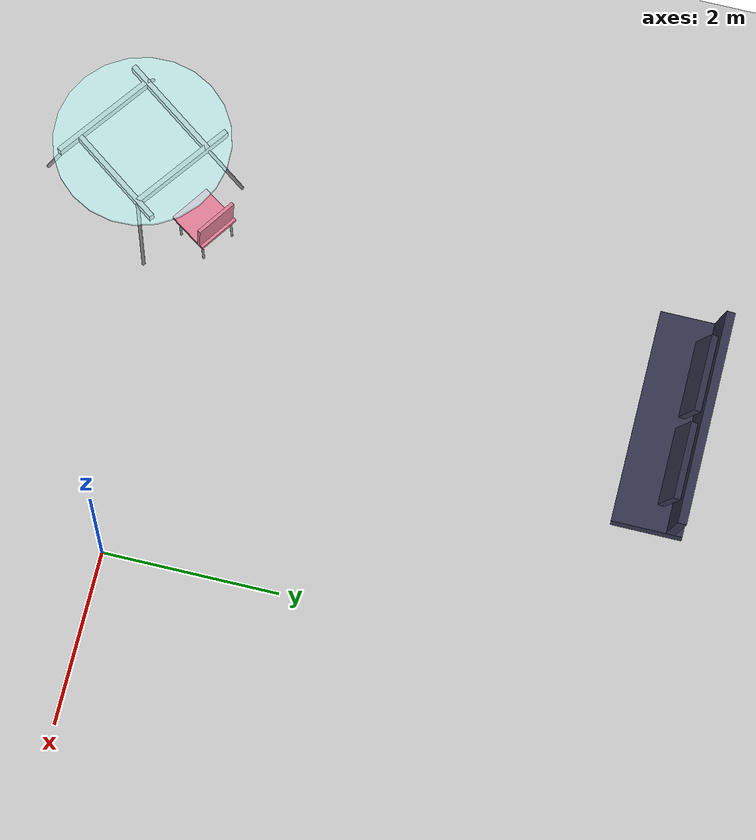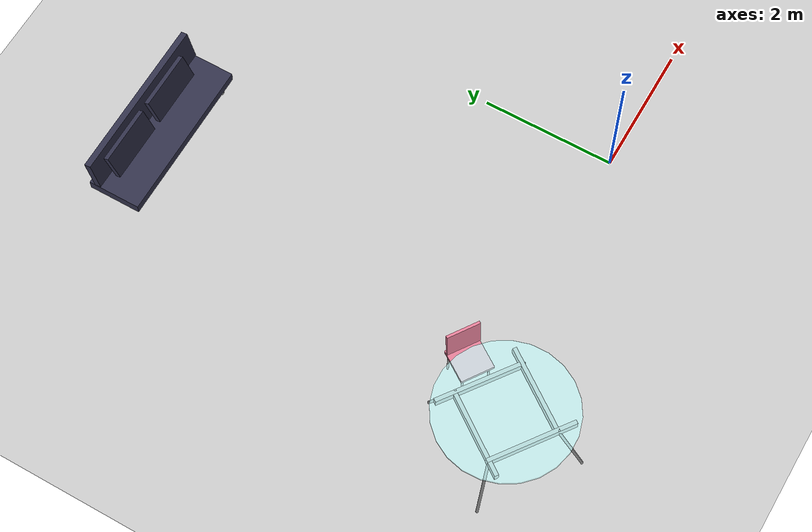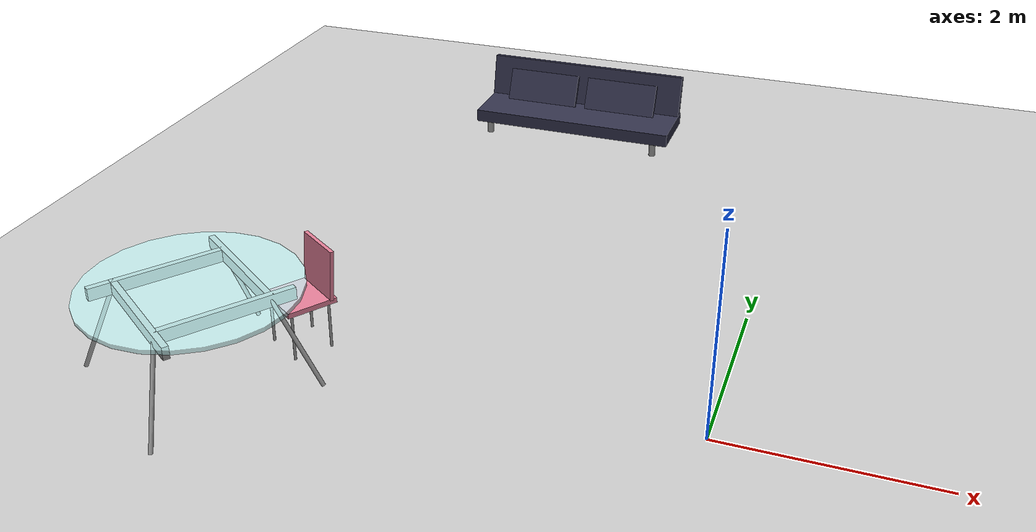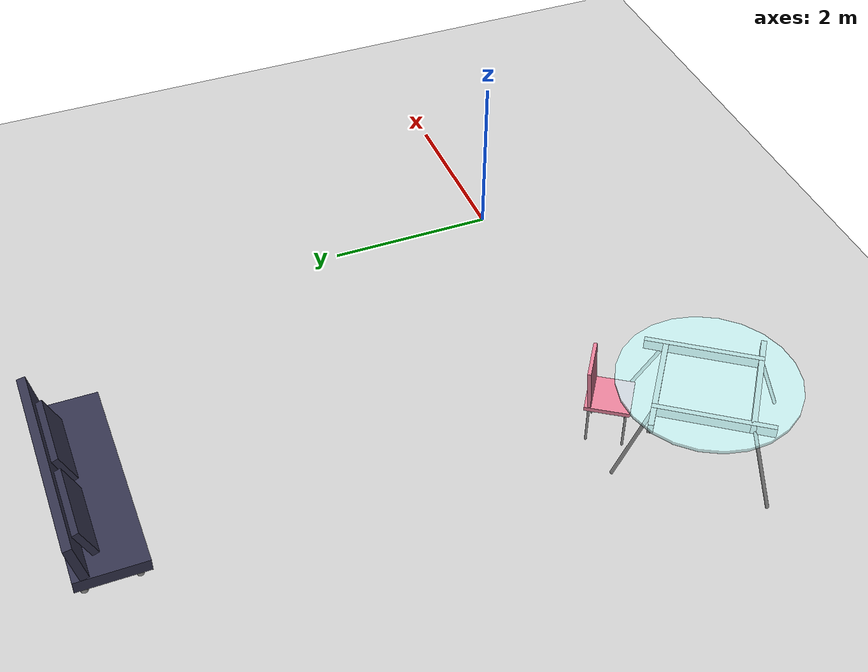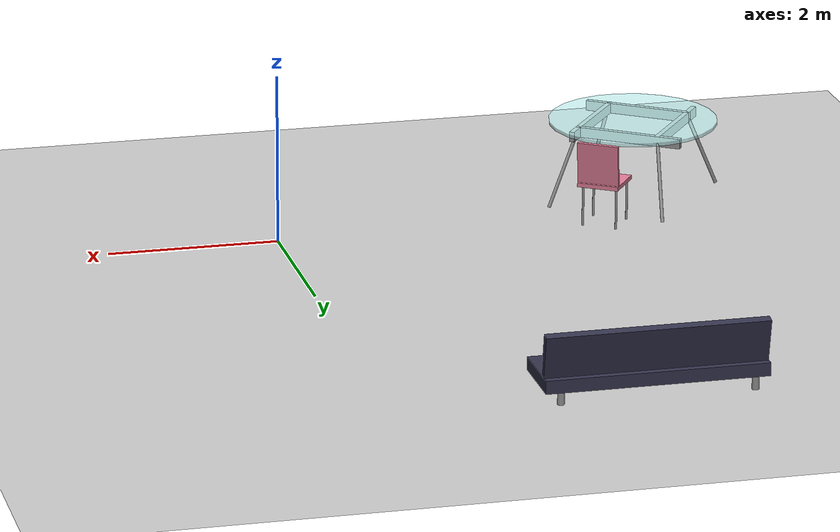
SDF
<sdf version="1.6">
 <world name="default">
  <model name="ground_plane">
   <static>1</static>
   <link name="link">
    <collision name="collision">
     <geometry><plane><normal>0 0 1</normal><size>100 100</size></plane></geometry>
     <surface>
      <contact><collide_bitmask>65535</collide_bitmask></contact>
      <friction><ode><mu>100</mu><mu2>50</mu2></ode></friction>
     </surface>
    </collision>
    <visual name="visual">
     <cast_shadows>0</cast_shadows>
     <geometry><plane><normal>0 0 1</normal><size>100 100</size></plane></geometry>
     <material>
      <script><uri>file://media/materials/scripts/gazebo.material</uri><name>Gazebo/Grey</name></script>
     </material>
    </visual>
   </link>
  </model>
  <model name="my_sofa_v2">
   <link name="link">
    <inertial>
     <mass>1</mass>
     <inertia>
      <ixx>0.166667</ixx>
      <ixy>0</ixy>
      <ixz>0</ixz>
      <iyy>0.166667</iyy>
      <iyz>0</iyz>
      <izz>0.166667</izz>
     </inertia>
     <pose>0 0 0.25 0 -0 0</pose>
    </inertial>
    <pose>0.065484 -0.164497 0 0 -0 0</pose>
    <visual name="visual">
     <geometry><box><size>2.5 0.8 0.15</size></box></geometry>
     <material>
      <script><name>Gazebo/Grey</name><uri>file://media/materials/scripts/gazebo.material</uri></script>
      <shader type="pixel"><normal_map>__default__</normal_map></shader>
      <ambient>0.2 0.2 0.3 1</ambient>
      <diffuse>0.2 0.2 0.3 1</diffuse>
      <specular>0.01 0.01 0.01 1</specular>
      <emissive>0.1 0.1 0.1 1</emissive>
     </material>
     <pose>0 0 0.25 0 -0 0</pose>
    </visual>
    <collision name="collision">
     <pose>0 0 0.25 0 -0 0</pose>
     <geometry><box><size>2.5 0.8 0.15</size></box></geometry>
     <surface>
      <friction>
       <ode><mu>1</mu><mu2>1</mu2><fdir1>0 0 0</fdir1><slip1>0</slip1><slip2>0</slip2></ode>
       <torsional>
        <coefficient>1</coefficient>
        <patch_radius>0</patch_radius>
        <surface_radius>0</surface_radius>
        <use_patch_radius>1</use_patch_radius>
        <ode><slip>0</slip></ode>
       </torsional>
      </friction>
      <bounce><restitution_coefficient>0</restitution_coefficient><threshold>1e+06</threshold></bounce>
      <contact>
       <collide_without_contact>0</collide_without_contact>
       <collide_without_contact_bitmask>1</collide_without_contact_bitmask>
       <collide_bitmask>1</collide_bitmask>
       <ode>
        <soft_cfm>0</soft_cfm>
        <soft_erp>0.2</soft_erp>
        <kp>1e+13</kp>
        <kd>1</kd>
        <max_vel>0.01</max_vel>
        <min_depth>0</min_depth>
       </ode>
       <bullet>
        <split_impulse>1</split_impulse>
        <split_impulse_penetration_threshold>-0.01</split_impulse_penetration_threshold>
        <soft_cfm>0</soft_cfm>
        <soft_erp>0.2</soft_erp>
        <kp>1e+13</kp>
        <kd>1</kd>
       </bullet>
      </contact>
     </surface>
    </collision>
   </link>
   <link name="link_0_clone">
    <inertial>
     <mass>1</mass>
     <inertia><ixx>0.145833</ixx><ixy>0</ixy><ixz>0</ixz><iyy>0.145833</iyy><iyz>0</iyz><izz>0.125</izz></inertia>
     <pose>0 0 0.5 0 -0 0</pose>
    </inertial>
    <pose>-0.992613 0.144994 -0.4 0 -0 0</pose>
    <visual name="visual">
     <pose>0 0 0.5 0 -0 0</pose>
     <geometry><cylinder><radius>0.04</radius><length>0.2</length></cylinder></geometry>
     <material>
      <lighting>1</lighting>
      <script><uri>file://media/materials/scripts/gazebo.material</uri><name>Gazebo/Grey</name></script>
      <shader type="pixel"><normal_map>__default__</normal_map></shader>
      <ambient>0.7 0.7 0.7 1</ambient>
      <diffuse>0.7 0.7 0.7 1</diffuse>
      <specular>0.01 0.01 0.01 1</specular>
      <emissive>0 0 0 1</emissive>
     </material>
    </visual>
    <collision name="collision">
     <pose>0 0 0.5 0 -0 0</pose>
     <geometry><cylinder><radius>0.04</radius><length>0.2</length></cylinder></geometry>
     <surface>
      <friction>
       <ode><mu>1</mu><mu2>1</mu2><fdir1>0 0 0</fdir1><slip1>0</slip1><slip2>0</slip2></ode>
       <torsional>
        <coefficient>1</coefficient>
        <patch_radius>0</patch_radius>
        <surface_radius>0</surface_radius>
        <use_patch_radius>1</use_patch_radius>
        <ode><slip>0</slip></ode>
       </torsional>
      </friction>
      <bounce><restitution_coefficient>0</restitution_coefficient><threshold>1e+06</threshold></bounce>
      <contact>
       <collide_without_contact>0</collide_without_contact>
       <collide_without_contact_bitmask>1</collide_without_contact_bitmask>
       <collide_bitmask>1</collide_bitmask>
       <ode>
        <soft_cfm>0</soft_cfm>
        <soft_erp>0.2</soft_erp>
        <kp>1e+13</kp>
        <kd>1</kd>
        <max_vel>0.01</max_vel>
        <min_depth>0</min_depth>
       </ode>
       <bullet>
        <split_impulse>1</split_impulse>
        <split_impulse_penetration_threshold>-0.01</split_impulse_penetration_threshold>
        <soft_cfm>0</soft_cfm>
        <soft_erp>0.2</soft_erp>
        <kp>1e+13</kp>
        <kd>1</kd>
       </bullet>
      </contact>
     </surface>
    </collision>
   </link>
   <link name="link_0_clone_clone">
    <inertial>
     <mass>1</mass>
     <inertia><ixx>0.145833</ixx><ixy>0</ixy><ixz>0</ixz><iyy>0.145833</iyy><iyz>0</iyz><izz>0.125</izz></inertia>
     <pose>0 0 0.5 0 -0 0</pose>
    </inertial>
    <pose>1.174 0.117328 -0.4 0 -0 0</pose>
    <visual name="visual">
     <pose>0 0 0.5 0 -0 0</pose>
     <geometry><cylinder><radius>0.04</radius><length>0.2</length></cylinder></geometry>
     <material>
      <lighting>1</lighting>
      <script><uri>file://media/materials/scripts/gazebo.material</uri><name>Gazebo/Grey</name></script>
      <shader type="pixel"><normal_map>__default__</normal_map></shader>
      <ambient>0.7 0.7 0.7 1</ambient>
      <diffuse>0.7 0.7 0.7 1</diffuse>
      <specular>0.01 0.01 0.01 1</specular>
      <emissive>0 0 0 1</emissive>
     </material>
    </visual>
    <collision name="collision">
     <pose>0 0 0.5 0 -0 0</pose>
     <geometry><cylinder><radius>0.04</radius><length>0.2</length></cylinder></geometry>
     <surface>
      <friction>
       <ode><mu>1</mu><mu2>1</mu2><fdir1>0 0 0</fdir1><slip1>0</slip1><slip2>0</slip2></ode>
       <torsional>
        <coefficient>1</coefficient>
        <patch_radius>0</patch_radius>
        <surface_radius>0</surface_radius>
        <use_patch_radius>1</use_patch_radius>
        <ode><slip>0</slip></ode>
       </torsional>
      </friction>
      <bounce><restitution_coefficient>0</restitution_coefficient><threshold>1e+06</threshold></bounce>
      <contact>
       <collide_without_contact>0</collide_without_contact>
       <collide_without_contact_bitmask>1</collide_without_contact_bitmask>
       <collide_bitmask>1</collide_bitmask>
       <ode>
        <soft_cfm>0</soft_cfm>
        <soft_erp>0.2</soft_erp>
        <kp>1e+13</kp>
        <kd>1</kd>
        <max_vel>0.01</max_vel>
        <min_depth>0</min_depth>
       </ode>
       <bullet>
        <split_impulse>1</split_impulse>
        <split_impulse_penetration_threshold>-0.01</split_impulse_penetration_threshold>
        <soft_cfm>0</soft_cfm>
        <soft_erp>0.2</soft_erp>
        <kp>1e+13</kp>
        <kd>1</kd>
       </bullet>
      </contact>
     </surface>
    </collision>
   </link>
   <link name="link_0_clone_clone_0">
    <inertial>
     <mass>1</mass>
     <inertia><ixx>0.145833</ixx><ixy>0</ixy><ixz>0</ixz><iyy>0.145833</iyy><iyz>0</iyz><izz>0.125</izz></inertia>
     <pose>0 0 0.5 0 -0 0</pose>
    </inertial>
    <pose>-0.981901 -0.432294 -0.4 0 -0 0</pose>
    <visual name="visual">
     <pose>0 0 0.5 0 -0 0</pose>
     <geometry><cylinder><radius>0.04</radius><length>0.2</length></cylinder></geometry>
     <material>
      <lighting>1</lighting>
      <script><uri>file://media/materials/scripts/gazebo.material</uri><name>Gazebo/Grey</name></script>
      <shader type="pixel"><normal_map>__default__</normal_map></shader>
      <ambient>0.7 0.7 0.7 1</ambient>
      <diffuse>0.7 0.7 0.7 1</diffuse>
      <specular>0.01 0.01 0.01 1</specular>
      <emissive>0 0 0 1</emissive>
     </material>
    </visual>
    <collision name="collision">
     <pose>0 0 0.5 0 -0 0</pose>
     <geometry><cylinder><radius>0.04</radius><length>0.2</length></cylinder></geometry>
     <surface>
      <friction>
       <ode><mu>1</mu><mu2>1</mu2><fdir1>0 0 0</fdir1><slip1>0</slip1><slip2>0</slip2></ode>
       <torsional>
        <coefficient>1</coefficient>
        <patch_radius>0</patch_radius>
        <surface_radius>0</surface_radius>
        <use_patch_radius>1</use_patch_radius>
        <ode><slip>0</slip></ode>
       </torsional>
      </friction>
      <bounce><restitution_coefficient>0</restitution_coefficient><threshold>1e+06</threshold></bounce>
      <contact>
       <collide_without_contact>0</collide_without_contact>
       <collide_without_contact_bitmask>1</collide_without_contact_bitmask>
       <collide_bitmask>1</collide_bitmask>
       <ode>
        <soft_cfm>0</soft_cfm>
        <soft_erp>0.2</soft_erp>
        <kp>1e+13</kp>
        <kd>1</kd>
        <max_vel>0.01</max_vel>
        <min_depth>0</min_depth>
       </ode>
       <bullet>
        <split_impulse>1</split_impulse>
        <split_impulse_penetration_threshold>-0.01</split_impulse_penetration_threshold>
        <soft_cfm>0</soft_cfm>
        <soft_erp>0.2</soft_erp>
        <kp>1e+13</kp>
        <kd>1</kd>
       </bullet>
      </contact>
     </surface>
    </collision>
   </link>
   <link name="link_0_clone_clone_1">
    <inertial>
     <mass>1</mass>
     <inertia><ixx>0.145833</ixx><ixy>0</ixy><ixz>0</ixz><iyy>0.145833</iyy><iyz>0</iyz><izz>0.125</izz></inertia>
     <pose>0 0 0.5 0 -0 0</pose>
    </inertial>
    <pose>1.178 -0.457589 -0.4 0 -0 0</pose>
    <visual name="visual">
     <pose>0 0 0.5 0 -0 0</pose>
     <geometry><cylinder><radius>0.04</radius><length>0.2</length></cylinder></geometry>
     <material>
      <lighting>1</lighting>
      <script><uri>file://media/materials/scripts/gazebo.material</uri><name>Gazebo/Grey</name></script>
      <shader type="pixel"><normal_map>__default__</normal_map></shader>
      <ambient>0.7 0.7 0.7 1</ambient>
      <diffuse>0.7 0.7 0.7 1</diffuse>
      <specular>0.01 0.01 0.01 1</specular>
      <emissive>0 0 0 1</emissive>
     </material>
    </visual>
    <collision name="collision">
     <pose>0 0 0.5 0 -0 0</pose>
     <geometry><cylinder><radius>0.04</radius><length>0.2</length></cylinder></geometry>
     <surface>
      <friction>
       <ode><mu>1</mu><mu2>1</mu2><fdir1>0 0 0</fdir1><slip1>0</slip1><slip2>0</slip2></ode>
       <torsional>
        <coefficient>1</coefficient>
        <patch_radius>0</patch_radius>
        <surface_radius>0</surface_radius>
        <use_patch_radius>1</use_patch_radius>
        <ode><slip>0</slip></ode>
       </torsional>
      </friction>
      <bounce><restitution_coefficient>0</restitution_coefficient><threshold>1e+06</threshold></bounce>
      <contact>
       <collide_without_contact>0</collide_without_contact>
       <collide_without_contact_bitmask>1</collide_without_contact_bitmask>
       <collide_bitmask>1</collide_bitmask>
       <ode>
        <soft_cfm>0</soft_cfm>
        <soft_erp>0.2</soft_erp>
        <kp>1e+13</kp>
        <kd>1</kd>
        <max_vel>0.01</max_vel>
        <min_depth>0</min_depth>
       </ode>
       <bullet>
        <split_impulse>1</split_impulse>
        <split_impulse_penetration_threshold>-0.01</split_impulse_penetration_threshold>
        <soft_cfm>0</soft_cfm>
        <soft_erp>0.2</soft_erp>
        <kp>1e+13</kp>
        <kd>1</kd>
       </bullet>
      </contact>
     </surface>
    </collision>
   </link>
   <link name="link_1">
    <inertial>
     <mass>1</mass>
     <inertia>
      <ixx>0.166667</ixx>
      <ixy>0</ixy>
      <ixz>0</ixz>
      <iyy>0.166667</iyy>
      <iyz>0</iyz>
      <izz>0.166667</izz>
     </inertia>
     <pose>0 0 0.5 0 -0 0</pose>
    </inertial>
    <pose>0.062037 -0.480098 0.074743 0 -0 0</pose>
    <visual name="visual">
     <pose>0 0 0.5 0.2 -0 0</pose>
     <geometry><box><size>2.5 0.1 0.5</size></box></geometry>
     <material>
      <lighting>1</lighting>
      <script><uri>file://media/materials/scripts/gazebo.material</uri><name>Gazebo/Grey</name></script>
      <shader type="pixel"><normal_map>__default__</normal_map></shader>
      <ambient>0.2 0.2 0.3 1</ambient>
      <diffuse>0.2 0.2 0.3 1</diffuse>
      <specular>0.01 0.01 0.01 1</specular>
      <emissive>0.1 0.1 0.1 1</emissive>
     </material>
    </visual>
    <collision name="collision">
     <pose>0 0 0.5 0.2 -0 0</pose>
     <geometry><box><size>2.5 0.1 0.5</size></box></geometry>
     <surface>
      <friction>
       <ode><mu>1</mu><mu2>1</mu2><fdir1>0 0 0</fdir1><slip1>0</slip1><slip2>0</slip2></ode>
       <torsional>
        <coefficient>1</coefficient>
        <patch_radius>0</patch_radius>
        <surface_radius>0</surface_radius>
        <use_patch_radius>1</use_patch_radius>
        <ode><slip>0</slip></ode>
       </torsional>
      </friction>
      <bounce><restitution_coefficient>0</restitution_coefficient><threshold>1e+06</threshold></bounce>
      <contact>
       <collide_without_contact>0</collide_without_contact>
       <collide_without_contact_bitmask>1</collide_without_contact_bitmask>
       <collide_bitmask>1</collide_bitmask>
       <ode>
        <soft_cfm>0</soft_cfm>
        <soft_erp>0.2</soft_erp>
        <kp>1e+13</kp>
        <kd>1</kd>
        <max_vel>0.01</max_vel>
        <min_depth>0</min_depth>
       </ode>
       <bullet>
        <split_impulse>1</split_impulse>
        <split_impulse_penetration_threshold>-0.01</split_impulse_penetration_threshold>
        <soft_cfm>0</soft_cfm>
        <soft_erp>0.2</soft_erp>
        <kp>1e+13</kp>
        <kd>1</kd>
       </bullet>
      </contact>
     </surface>
    </collision>
   </link>
   <link name="link_2">
    <inertial>
     <mass>1</mass>
     <inertia>
      <ixx>0.166667</ixx>
      <ixy>0</ixy>
      <ixz>0</ixz>
      <iyy>0.166667</iyy>
      <iyz>0</iyz>
      <izz>0.166667</izz>
     </inertia>
     <pose>0 0 0.5 0 -0 0</pose>
    </inertial>
    <pose>0.596829 -0.338066 0.017621 0 -0 0</pose>
    <visual name="visual">
     <pose>0 0 0.5 0.4 -0 0</pose>
     <geometry><box><size>0.9 0.08 0.4</size></box></geometry>
     <material>
      <lighting>1</lighting>
      <script><uri>file://media/materials/scripts/gazebo.material</uri><name>Gazebo/Grey</name></script>
      <shader type="pixel"><normal_map>__default__</normal_map></shader>
      <ambient>0.2 0.2 0.3 1</ambient>
      <diffuse>0.2 0.2 0.3 1</diffuse>
      <specular>0.01 0.01 0.01 1</specular>
      <emissive>0.1 0.1 0.1 1</emissive>
     </material>
    </visual>
    <collision name="collision">
     <pose>0 0 0.5 0.4 -0 0</pose>
     <geometry><box><size>0.9 0.08 0.4</size></box></geometry>
     <surface>
      <friction>
       <ode><mu>1</mu><mu2>1</mu2><fdir1>0 0 0</fdir1><slip1>0</slip1><slip2>0</slip2></ode>
       <torsional>
        <coefficient>1</coefficient>
        <patch_radius>0</patch_radius>
        <surface_radius>0</surface_radius>
        <use_patch_radius>1</use_patch_radius>
        <ode><slip>0</slip></ode>
       </torsional>
      </friction>
      <bounce><restitution_coefficient>0</restitution_coefficient><threshold>1e+06</threshold></bounce>
      <contact>
       <collide_without_contact>0</collide_without_contact>
       <collide_without_contact_bitmask>1</collide_without_contact_bitmask>
       <collide_bitmask>1</collide_bitmask>
       <ode>
        <soft_cfm>0</soft_cfm>
        <soft_erp>0.2</soft_erp>
        <kp>1e+13</kp>
        <kd>1</kd>
        <max_vel>0.01</max_vel>
        <min_depth>0</min_depth>
       </ode>
       <bullet>
        <split_impulse>1</split_impulse>
        <split_impulse_penetration_threshold>-0.01</split_impulse_penetration_threshold>
        <soft_cfm>0</soft_cfm>
        <soft_erp>0.2</soft_erp>
        <kp>1e+13</kp>
        <kd>1</kd>
       </bullet>
      </contact>
     </surface>
    </collision>
   </link>
   <link name="link_2_clone">
    <inertial>
     <mass>1</mass>
     <inertia>
      <ixx>0.166667</ixx>
      <ixy>0</ixy>
      <ixz>0</ixz>
      <iyy>0.166667</iyy>
      <iyz>0</iyz>
      <izz>0.166667</izz>
     </inertia>
     <pose>0 0 0.5 0 -0 0</pose>
    </inertial>
    <pose>-0.439001 -0.335804 0.017621 0 -0 0</pose>
    <visual name="visual">
     <pose>0 0 0.5 0.4 -0 0</pose>
     <geometry><box><size>0.9 0.08 0.4</size></box></geometry>
     <material>
      <lighting>1</lighting>
      <script><uri>file://media/materials/scripts/gazebo.material</uri><name>Gazebo/Grey</name></script>
      <shader type="pixel"><normal_map>__default__</normal_map></shader>
      <ambient>0.2 0.2 0.3 1</ambient>
      <diffuse>0.2 0.2 0.3 1</diffuse>
      <specular>0.01 0.01 0.01 1</specular>
      <emissive>0.1 0.1 0.1 1</emissive>
     </material>
    </visual>
    <collision name="collision">
     <pose>0 0 0.5 0.4 -0 0</pose>
     <geometry><box><size>0.9 0.08 0.4</size></box></geometry>
     <surface>
      <friction>
       <ode><mu>1</mu><mu2>1</mu2><fdir1>0 0 0</fdir1><slip1>0</slip1><slip2>0</slip2></ode>
       <torsional>
        <coefficient>1</coefficient>
        <patch_radius>0</patch_radius>
        <surface_radius>0</surface_radius>
        <use_patch_radius>1</use_patch_radius>
        <ode><slip>0</slip></ode>
       </torsional>
      </friction>
      <bounce><restitution_coefficient>0</restitution_coefficient><threshold>1e+06</threshold></bounce>
      <contact>
       <collide_without_contact>0</collide_without_contact>
       <collide_without_contact_bitmask>1</collide_without_contact_bitmask>
       <collide_bitmask>1</collide_bitmask>
       <ode>
        <soft_cfm>0</soft_cfm>
        <soft_erp>0.2</soft_erp>
        <kp>1e+13</kp>
        <kd>1</kd>
        <max_vel>0.01</max_vel>
        <min_depth>0</min_depth>
       </ode>
       <bullet>
        <split_impulse>1</split_impulse>
        <split_impulse_penetration_threshold>-0.01</split_impulse_penetration_threshold>
        <soft_cfm>0</soft_cfm>
        <soft_erp>0.2</soft_erp>
        <kp>1e+13</kp>
        <kd>1</kd>
       </bullet>
      </contact>
     </surface>
    </collision>
   </link>
   <static>1</static>
   <pose>-2.7731 5.58756 0 0 -0 3.14146</pose>
  </model>
  <model name="my_round_table">
   <link name="link_0">
    <inertial>
     <mass>1</mass>
     <inertia><ixx>0.145833</ixx><ixy>0</ixy><ixz>0</ixz><iyy>0.145833</iyy><iyz>0</iyz><izz>0.125</izz></inertia>
    </inertial>
    <pose>-0.33877 -8.15163 0.5 0 -0 0</pose>
    <visual name="visual">
     <pose>0 0 0.45 0 -0 0</pose>
     <geometry><cylinder><radius>1</radius><length>0.04</length></cylinder></geometry>
     <material>
      <lighting>1</lighting>
      <script><uri>file://media/materials/scripts/gazebo.material</uri><name>Gazebo/Grey</name></script>
      <shader type="pixel"><normal_map>__default__</normal_map></shader>
      <ambient>0.79 1 1 0.4</ambient>
      <diffuse>0.79 1 1 1</diffuse>
      <specular>0.01 0.01 0.01 1</specular>
      <emissive>0 0 0 1</emissive>
     </material>
     <transparency>0.3</transparency>
    </visual>
    <collision name="collision">
     <pose>0 0 0.45 0 -0 0</pose>
     <geometry><cylinder><radius>1</radius><length>0.04</length></cylinder></geometry>
     <surface>
      <friction>
       <ode><mu>1</mu><mu2>1</mu2><fdir1>0 0 0</fdir1><slip1>0</slip1><slip2>0</slip2></ode>
       <torsional>
        <coefficient>1</coefficient>
        <patch_radius>0</patch_radius>
        <surface_radius>0</surface_radius>
        <use_patch_radius>1</use_patch_radius>
        <ode><slip>0</slip></ode>
       </torsional>
      </friction>
      <bounce><restitution_coefficient>0</restitution_coefficient><threshold>1e+06</threshold></bounce>
      <contact>
       <collide_without_contact>0</collide_without_contact>
       <collide_without_contact_bitmask>1</collide_without_contact_bitmask>
       <collide_bitmask>1</collide_bitmask>
       <ode>
        <soft_cfm>0</soft_cfm>
        <soft_erp>0.2</soft_erp>
        <kp>1e+13</kp>
        <kd>1</kd>
        <max_vel>0.01</max_vel>
        <min_depth>0</min_depth>
       </ode>
       <bullet>
        <split_impulse>1</split_impulse>
        <split_impulse_penetration_threshold>-0.01</split_impulse_penetration_threshold>
        <soft_cfm>0</soft_cfm>
        <soft_erp>0.2</soft_erp>
        <kp>1e+13</kp>
        <kd>1</kd>
       </bullet>
      </contact>
     </surface>
    </collision>
   </link>
   <link name="link_0_0">
    <inertial>
     <mass>1</mass>
     <inertia>
      <ixx>0.166667</ixx>
      <ixy>0</ixy>
      <ixz>0</ixz>
      <iyy>0.166667</iyy>
      <iyz>0</iyz>
      <izz>0.166667</izz>
     </inertia>
    </inertial>
    <pose>-0.834607 -8.25556 0.5 0 -0 0</pose>
    <visual name="visual">
     <pose>0 0 0.4 0 -0 0</pose>
     <geometry><box><size>0.06 1.3 0.12</size></box></geometry>
     <material>
      <lighting>1</lighting>
      <script><uri>file://media/materials/scripts/gazebo.material</uri><name>Gazebo/Grey</name></script>
      <shader type="pixel"><normal_map>__default__</normal_map></shader>
      <ambient>0.6 0.6 0.6 1</ambient>
      <diffuse>0.7 0.7 0.7 1</diffuse>
      <specular>0.01 0.01 0.01 1</specular>
      <emissive>0 0 0 1</emissive>
     </material>
    </visual>
    <collision name="collision">
     <pose>0 0 0.4 0 -0 0</pose>
     <geometry><box><size>0.06 1.3 0.12</size></box></geometry>
     <surface>
      <friction>
       <ode><mu>1</mu><mu2>1</mu2><fdir1>0 0 0</fdir1><slip1>0</slip1><slip2>0</slip2></ode>
       <torsional>
        <coefficient>1</coefficient>
        <patch_radius>0</patch_radius>
        <surface_radius>0</surface_radius>
        <use_patch_radius>1</use_patch_radius>
        <ode><slip>0</slip></ode>
       </torsional>
      </friction>
      <bounce><restitution_coefficient>0</restitution_coefficient><threshold>1e+06</threshold></bounce>
      <contact>
       <collide_without_contact>0</collide_without_contact>
       <collide_without_contact_bitmask>1</collide_without_contact_bitmask>
       <collide_bitmask>1</collide_bitmask>
       <ode>
        <soft_cfm>0</soft_cfm>
        <soft_erp>0.2</soft_erp>
        <kp>1e+13</kp>
        <kd>1</kd>
        <max_vel>0.01</max_vel>
        <min_depth>0</min_depth>
       </ode>
       <bullet>
        <split_impulse>1</split_impulse>
        <split_impulse_penetration_threshold>-0.01</split_impulse_penetration_threshold>
        <soft_cfm>0</soft_cfm>
        <soft_erp>0.2</soft_erp>
        <kp>1e+13</kp>
        <kd>1</kd>
       </bullet>
      </contact>
     </surface>
    </collision>
   </link>
   <link name="link_0_0_clone">
    <inertial>
     <mass>1</mass>
     <inertia>
      <ixx>0.166667</ixx>
      <ixy>0</ixy>
      <ixz>0</ixz>
      <iyy>0.166667</iyy>
      <iyz>0</iyz>
      <izz>0.166667</izz>
     </inertia>
    </inertial>
    <pose>-0.470736 -7.63546 0.5 0 -0 0</pose>
    <visual name="visual_0">
     <pose>0 0 0.4 0 -0 1.5707</pose>
     <geometry><box><size>0.06 1.3 0.12</size></box></geometry>
     <material>
      <lighting>1</lighting>
      <script><uri>file://media/materials/scripts/gazebo.material</uri><name>Gazebo/Grey</name></script>
      <shader type="pixel"><normal_map>__default__</normal_map></shader>
      <ambient>0.6 0.6 0.6 1</ambient>
      <diffuse>0.7 0.7 0.7 1</diffuse>
      <specular>0.01 0.01 0.01 1</specular>
      <emissive>0 0 0 1</emissive>
     </material>
    </visual>
    <collision name="collision">
     <pose>0 0 0.4 0 -0 1.5707</pose>
     <geometry><box><size>0.06 1.3 0.12</size></box></geometry>
     <surface>
      <friction>
       <ode><mu>1</mu><mu2>1</mu2><fdir1>0 0 0</fdir1><slip1>0</slip1><slip2>0</slip2></ode>
       <torsional>
        <coefficient>1</coefficient>
        <patch_radius>0</patch_radius>
        <surface_radius>0</surface_radius>
        <use_patch_radius>1</use_patch_radius>
        <ode><slip>0</slip></ode>
       </torsional>
      </friction>
      <bounce><restitution_coefficient>0</restitution_coefficient><threshold>1e+06</threshold></bounce>
      <contact>
       <collide_without_contact>0</collide_without_contact>
       <collide_without_contact_bitmask>1</collide_without_contact_bitmask>
       <collide_bitmask>1</collide_bitmask>
       <ode>
        <soft_cfm>0</soft_cfm>
        <soft_erp>0.2</soft_erp>
        <kp>1e+13</kp>
        <kd>1</kd>
        <max_vel>0.01</max_vel>
        <min_depth>0</min_depth>
       </ode>
       <bullet>
        <split_impulse>1</split_impulse>
        <split_impulse_penetration_threshold>-0.01</split_impulse_penetration_threshold>
        <soft_cfm>0</soft_cfm>
        <soft_erp>0.2</soft_erp>
        <kp>1e+13</kp>
        <kd>1</kd>
       </bullet>
      </contact>
     </surface>
    </collision>
   </link>
   <link name="link_0_0_clone_0">
    <inertial>
     <mass>1</mass>
     <inertia>
      <ixx>0.166667</ixx>
      <ixy>0</ixy>
      <ixz>0</ixz>
      <iyy>0.166667</iyy>
      <iyz>0</iyz>
      <izz>0.166667</izz>
     </inertia>
    </inertial>
    <pose>0.150666 -8.04578 0.5 0 -0 0</pose>
    <visual name="visual_0">
     <pose>0 0 0.4 0 -0 0</pose>
     <geometry><box><size>0.06 1.3 0.12</size></box></geometry>
     <material>
      <lighting>1</lighting>
      <script><uri>file://media/materials/scripts/gazebo.material</uri><name>Gazebo/Grey</name></script>
      <shader type="pixel"><normal_map>__default__</normal_map></shader>
      <ambient>0.6 0.6 0.6 1</ambient>
      <diffuse>0.7 0.7 0.7 1</diffuse>
      <specular>0.01 0.01 0.01 1</specular>
      <emissive>0 0 0 1</emissive>
     </material>
    </visual>
    <collision name="collision">
     <pose>0 0 0.4 0 -0 0</pose>
     <geometry><box><size>0.06 1.3 0.12</size></box></geometry>
     <surface>
      <friction>
       <ode><mu>1</mu><mu2>1</mu2><fdir1>0 0 0</fdir1><slip1>0</slip1><slip2>0</slip2></ode>
       <torsional>
        <coefficient>1</coefficient>
        <patch_radius>0</patch_radius>
        <surface_radius>0</surface_radius>
        <use_patch_radius>1</use_patch_radius>
        <ode><slip>0</slip></ode>
       </torsional>
      </friction>
      <bounce><restitution_coefficient>0</restitution_coefficient><threshold>1e+06</threshold></bounce>
      <contact>
       <collide_without_contact>0</collide_without_contact>
       <collide_without_contact_bitmask>1</collide_without_contact_bitmask>
       <collide_bitmask>1</collide_bitmask>
       <ode>
        <soft_cfm>0</soft_cfm>
        <soft_erp>0.2</soft_erp>
        <kp>1e+13</kp>
        <kd>1</kd>
        <max_vel>0.01</max_vel>
        <min_depth>0</min_depth>
       </ode>
       <bullet>
        <split_impulse>1</split_impulse>
        <split_impulse_penetration_threshold>-0.01</split_impulse_penetration_threshold>
        <soft_cfm>0</soft_cfm>
        <soft_erp>0.2</soft_erp>
        <kp>1e+13</kp>
        <kd>1</kd>
       </bullet>
      </contact>
     </surface>
    </collision>
   </link>
   <link name="link_0_0_clone_clone">
    <inertial>
     <mass>1</mass>
     <inertia>
      <ixx>0.166667</ixx>
      <ixy>0</ixy>
      <ixz>0</ixz>
      <iyy>0.166667</iyy>
      <iyz>0</iyz>
      <izz>0.166667</izz>
     </inertia>
    </inertial>
    <pose>-0.215262 -8.66786 0.5 0 -0 0</pose>
    <visual name="visual_0">
     <pose>0 0 0.4 0 -0 1.5707</pose>
     <geometry><box><size>0.06 1.3 0.12</size></box></geometry>
     <material>
      <lighting>1</lighting>
      <script><uri>file://media/materials/scripts/gazebo.material</uri><name>Gazebo/Grey</name></script>
      <shader type="pixel"><normal_map>__default__</normal_map></shader>
      <ambient>0.6 0.6 0.6 1</ambient>
      <diffuse>0.7 0.7 0.7 1</diffuse>
      <specular>0.01 0.01 0.01 1</specular>
      <emissive>0 0 0 1</emissive>
     </material>
    </visual>
    <collision name="collision">
     <pose>0 0 0.4 0 -0 1.5707</pose>
     <geometry><box><size>0.06 1.3 0.12</size></box></geometry>
     <surface>
      <friction>
       <ode><mu>1</mu><mu2>1</mu2><fdir1>0 0 0</fdir1><slip1>0</slip1><slip2>0</slip2></ode>
       <torsional>
        <coefficient>1</coefficient>
        <patch_radius>0</patch_radius>
        <surface_radius>0</surface_radius>
        <use_patch_radius>1</use_patch_radius>
        <ode><slip>0</slip></ode>
       </torsional>
      </friction>
      <bounce><restitution_coefficient>0</restitution_coefficient><threshold>1e+06</threshold></bounce>
      <contact>
       <collide_without_contact>0</collide_without_contact>
       <collide_without_contact_bitmask>1</collide_without_contact_bitmask>
       <collide_bitmask>1</collide_bitmask>
       <ode>
        <soft_cfm>0</soft_cfm>
        <soft_erp>0.2</soft_erp>
        <kp>1e+13</kp>
        <kd>1</kd>
        <max_vel>0.01</max_vel>
        <min_depth>0</min_depth>
       </ode>
       <bullet>
        <split_impulse>1</split_impulse>
        <split_impulse_penetration_threshold>-0.01</split_impulse_penetration_threshold>
        <soft_cfm>0</soft_cfm>
        <soft_erp>0.2</soft_erp>
        <kp>1e+13</kp>
        <kd>1</kd>
       </bullet>
      </contact>
     </surface>
    </collision>
   </link>
   <link name="link_1_clone_1_clone_clone">
    <inertial>
     <mass>1</mass>
     <inertia><ixx>0.145833</ixx><ixy>0</ixy><ixz>0</ixz><iyy>0.145833</iyy><iyz>0</iyz><izz>0.125</izz></inertia>
    </inertial>
    <pose>-0.929071 -7.47144 0.501681 0 0 -0.237389</pose>
    <visual name="visual">
     <pose>0 0 -0.02 0.3 0.3 0</pose>
     <geometry><cylinder><radius>0.02</radius><length>1</length></cylinder></geometry>
     <material>
      <lighting>1</lighting>
      <script><uri>file://media/materials/scripts/gazebo.material</uri><name>Gazebo/Grey</name></script>
      <shader type="pixel"><normal_map>__default__</normal_map></shader>
      <ambient>0.5 0.5 0.5 1</ambient>
      <diffuse>0.8 0.8 0.8 1</diffuse>
      <specular>0.01 0.01 0.01 1</specular>
      <emissive>0 0 0 1</emissive>
     </material>
    </visual>
    <collision name="collision">
     <pose>0 0 -0.02 0.3 0.3 0</pose>
     <geometry><cylinder><radius>0.02</radius><length>1</length></cylinder></geometry>
     <surface>
      <friction>
       <ode><mu>1</mu><mu2>1</mu2><fdir1>0 0 0</fdir1><slip1>0</slip1><slip2>0</slip2></ode>
       <torsional>
        <coefficient>1</coefficient>
        <patch_radius>0</patch_radius>
        <surface_radius>0</surface_radius>
        <use_patch_radius>1</use_patch_radius>
        <ode><slip>0</slip></ode>
       </torsional>
      </friction>
      <bounce><restitution_coefficient>0</restitution_coefficient><threshold>1e+06</threshold></bounce>
      <contact>
       <collide_without_contact>0</collide_without_contact>
       <collide_without_contact_bitmask>1</collide_without_contact_bitmask>
       <collide_bitmask>1</collide_bitmask>
       <ode>
        <soft_cfm>0</soft_cfm>
        <soft_erp>0.2</soft_erp>
        <kp>1e+13</kp>
        <kd>1</kd>
        <max_vel>0.01</max_vel>
        <min_depth>0</min_depth>
       </ode>
       <bullet>
        <split_impulse>1</split_impulse>
        <split_impulse_penetration_threshold>-0.01</split_impulse_penetration_threshold>
        <soft_cfm>0</soft_cfm>
        <soft_erp>0.2</soft_erp>
        <kp>1e+13</kp>
        <kd>1</kd>
       </bullet>
      </contact>
     </surface>
    </collision>
   </link>
   <link name="link_1_clone_1_clone_clone_clone">
    <inertial>
     <mass>1</mass>
     <inertia><ixx>0.145833</ixx><ixy>0</ixy><ixz>0</ixz><iyy>0.145833</iyy><iyz>0</iyz><izz>0.125</izz></inertia>
    </inertial>
    <pose>-0.965306 -8.81368 0.501681 0 -0 1.63052</pose>
    <visual name="visual">
     <pose>0 0 -0.02 0.3 0.3 0</pose>
     <geometry><cylinder><radius>0.02</radius><length>1</length></cylinder></geometry>
     <material>
      <lighting>1</lighting>
      <script><uri>file://media/materials/scripts/gazebo.material</uri><name>Gazebo/Grey</name></script>
      <shader type="pixel"><normal_map>__default__</normal_map></shader>
      <ambient>0.5 0.5 0.5 1</ambient>
      <diffuse>0.8 0.8 0.8 1</diffuse>
      <specular>0.01 0.01 0.01 1</specular>
      <emissive>0 0 0 1</emissive>
     </material>
    </visual>
    <collision name="collision">
     <pose>0 0 -0.02 0.3 0.3 0</pose>
     <geometry><cylinder><radius>0.02</radius><length>1</length></cylinder></geometry>
     <surface>
      <friction>
       <ode><mu>1</mu><mu2>1</mu2><fdir1>0 0 0</fdir1><slip1>0</slip1><slip2>0</slip2></ode>
       <torsional>
        <coefficient>1</coefficient>
        <patch_radius>0</patch_radius>
        <surface_radius>0</surface_radius>
        <use_patch_radius>1</use_patch_radius>
        <ode><slip>0</slip></ode>
       </torsional>
      </friction>
      <bounce><restitution_coefficient>0</restitution_coefficient><threshold>1e+06</threshold></bounce>
      <contact>
       <collide_without_contact>0</collide_without_contact>
       <collide_without_contact_bitmask>1</collide_without_contact_bitmask>
       <collide_bitmask>1</collide_bitmask>
       <ode>
        <soft_cfm>0</soft_cfm>
        <soft_erp>0.2</soft_erp>
        <kp>1e+13</kp>
        <kd>1</kd>
        <max_vel>0.01</max_vel>
        <min_depth>0</min_depth>
       </ode>
       <bullet>
        <split_impulse>1</split_impulse>
        <split_impulse_penetration_threshold>-0.01</split_impulse_penetration_threshold>
        <soft_cfm>0</soft_cfm>
        <soft_erp>0.2</soft_erp>
        <kp>1e+13</kp>
        <kd>1</kd>
       </bullet>
      </contact>
     </surface>
    </collision>
   </link>
   <link name="link_1_clone_1_clone_clone_clone_0">
    <inertial>
     <mass>1</mass>
     <inertia><ixx>0.145833</ixx><ixy>0</ixy><ixz>0</ixz><iyy>0.145833</iyy><iyz>0</iyz><izz>0.125</izz></inertia>
    </inertial>
    <pose>0.275919 -7.4779 0.501681 0 0 -1.39702</pose>
    <visual name="visual">
     <pose>0 0 -0.02 0.3 0.3 0</pose>
     <geometry><cylinder><radius>0.02</radius><length>1</length></cylinder></geometry>
     <material>
      <lighting>1</lighting>
      <script><uri>file://media/materials/scripts/gazebo.material</uri><name>Gazebo/Grey</name></script>
      <shader type="pixel"><normal_map>__default__</normal_map></shader>
      <ambient>0.5 0.5 0.5 1</ambient>
      <diffuse>0.8 0.8 0.8 1</diffuse>
      <specular>0.01 0.01 0.01 1</specular>
      <emissive>0 0 0 1</emissive>
     </material>
    </visual>
    <collision name="collision">
     <pose>0 0 0 0.3 0.3 0</pose>
     <geometry><cylinder><radius>0.02</radius><length>1</length></cylinder></geometry>
     <surface>
      <friction>
       <ode><mu>1</mu><mu2>1</mu2><fdir1>0 0 0</fdir1><slip1>0</slip1><slip2>0</slip2></ode>
       <torsional>
        <coefficient>1</coefficient>
        <patch_radius>0</patch_radius>
        <surface_radius>0</surface_radius>
        <use_patch_radius>1</use_patch_radius>
        <ode><slip>0</slip></ode>
       </torsional>
      </friction>
      <bounce><restitution_coefficient>0</restitution_coefficient><threshold>1e+06</threshold></bounce>
      <contact>
       <collide_without_contact>0</collide_without_contact>
       <collide_without_contact_bitmask>1</collide_without_contact_bitmask>
       <collide_bitmask>1</collide_bitmask>
       <ode>
        <soft_cfm>0</soft_cfm>
        <soft_erp>0.2</soft_erp>
        <kp>1e+13</kp>
        <kd>1</kd>
        <max_vel>0.01</max_vel>
        <min_depth>0</min_depth>
       </ode>
       <bullet>
        <split_impulse>1</split_impulse>
        <split_impulse_penetration_threshold>-0.01</split_impulse_penetration_threshold>
        <soft_cfm>0</soft_cfm>
        <soft_erp>0.2</soft_erp>
        <kp>1e+13</kp>
        <kd>1</kd>
       </bullet>
      </contact>
     </surface>
    </collision>
   </link>
   <link name="link_1_clone_1_clone_clone_clone_0_clone">
    <inertial>
     <mass>1</mass>
     <inertia><ixx>0.145833</ixx><ixy>0</ixy><ixz>0</ixz><iyy>0.145833</iyy><iyz>0</iyz><izz>0.125</izz></inertia>
    </inertial>
    <pose>0.309037 -8.79302 0.501681 0 0 -3.03586</pose>
    <visual name="visual">
     <pose>0 0 -0.02 0.3 0.3 0</pose>
     <geometry><cylinder><radius>0.02</radius><length>1</length></cylinder></geometry>
     <material>
      <lighting>1</lighting>
      <script><uri>file://media/materials/scripts/gazebo.material</uri><name>Gazebo/Grey</name></script>
      <shader type="pixel"><normal_map>__default__</normal_map></shader>
      <ambient>0.5 0.5 0.5 1</ambient>
      <diffuse>0.8 0.8 0.8 1</diffuse>
      <specular>0.01 0.01 0.01 1</specular>
      <emissive>0 0 0 1</emissive>
     </material>
    </visual>
    <collision name="collision">
     <pose>0 0 -0.02 0.3 0.3 0</pose>
     <geometry><cylinder><radius>0.02</radius><length>1</length></cylinder></geometry>
     <surface>
      <friction>
       <ode><mu>1</mu><mu2>1</mu2><fdir1>0 0 0</fdir1><slip1>0</slip1><slip2>0</slip2></ode>
       <torsional>
        <coefficient>1</coefficient>
        <patch_radius>0</patch_radius>
        <surface_radius>0</surface_radius>
        <use_patch_radius>1</use_patch_radius>
        <ode><slip>0</slip></ode>
       </torsional>
      </friction>
      <bounce><restitution_coefficient>0</restitution_coefficient><threshold>1e+06</threshold></bounce>
      <contact>
       <collide_without_contact>0</collide_without_contact>
       <collide_without_contact_bitmask>1</collide_without_contact_bitmask>
       <collide_bitmask>1</collide_bitmask>
       <ode>
        <soft_cfm>0</soft_cfm>
        <soft_erp>0.2</soft_erp>
        <kp>1e+13</kp>
        <kd>1</kd>
        <max_vel>0.01</max_vel>
        <min_depth>0</min_depth>
       </ode>
       <bullet>
        <split_impulse>1</split_impulse>
        <split_impulse_penetration_threshold>-0.01</split_impulse_penetration_threshold>
        <soft_cfm>0</soft_cfm>
        <soft_erp>0.2</soft_erp>
        <kp>1e+13</kp>
        <kd>1</kd>
       </bullet>
      </contact>
     </surface>
    </collision>
   </link>
   <static>1</static>
   <pose>0.585861 5.75134 0 0 0 -0.623774</pose>
  </model>
  <model name="my_chair_2">
   <link name="link">
    <inertial>
     <mass>1</mass>
     <inertia>
      <ixx>0.166667</ixx>
      <ixy>0</ixy>
      <ixz>0</ixz>
      <iyy>0.166667</iyy>
      <iyz>0</iyz>
      <izz>0.166667</izz>
     </inertia>
    </inertial>
    <gravity>0</gravity>
    <visual name="visual">
     <geometry><box><size>0.5 0.5 0.05</size></box></geometry>
     <material>
      <script><name>Gazebo/Grey</name><uri>file://media/materials/scripts/gazebo.material</uri></script>
      <shader type="pixel"><normal_map>__default__</normal_map></shader>
      <ambient>0.9 0.5 0.6 1</ambient>
      <diffuse>0.9 0.5 0.6 1</diffuse>
      <specular>0.01 0.01 0.01 1</specular>
      <emissive>0 0 0 1</emissive>
     </material>
     <pose>0 0 0.5 0 -0 0</pose>
    </visual>
    <collision name="collision">
     <pose>0 0 0.5 0 -0 0</pose>
     <geometry><box><size>0.5 0.5 0.05</size></box></geometry>
     <surface>
      <friction>
       <ode><mu>1</mu><mu2>1</mu2><fdir1>0 0 0</fdir1><slip1>0</slip1><slip2>0</slip2></ode>
       <torsional>
        <coefficient>1</coefficient>
        <patch_radius>0</patch_radius>
        <surface_radius>0</surface_radius>
        <use_patch_radius>1</use_patch_radius>
        <ode><slip>0</slip></ode>
       </torsional>
      </friction>
      <bounce><restitution_coefficient>0</restitution_coefficient><threshold>1e+06</threshold></bounce>
      <contact>
       <collide_without_contact>0</collide_without_contact>
       <collide_without_contact_bitmask>1</collide_without_contact_bitmask>
       <collide_bitmask>1</collide_bitmask>
       <ode>
        <soft_cfm>0</soft_cfm>
        <soft_erp>0.2</soft_erp>
        <kp>1e+13</kp>
        <kd>1</kd>
        <max_vel>0.01</max_vel>
        <min_depth>0</min_depth>
       </ode>
       <bullet>
        <split_impulse>1</split_impulse>
        <split_impulse_penetration_threshold>-0.01</split_impulse_penetration_threshold>
        <soft_cfm>0</soft_cfm>
        <soft_erp>0.2</soft_erp>
        <kp>1e+13</kp>
        <kd>1</kd>
       </bullet>
      </contact>
     </surface>
    </collision>
   </link>
   <link name="link_0">
    <inertial>
     <mass>1</mass>
     <inertia><ixx>0.145833</ixx><ixy>0</ixy><ixz>0</ixz><iyy>0.145833</iyy><iyz>0</iyz><izz>0.125</izz></inertia>
    </inertial>
    <pose>-0.200315 -0.184767 -0.272701 -0 -0 -0</pose>
    <gravity>0</gravity>
    <visual name="visual">
     <pose>0 0 0.5 0 -0 0</pose>
     <geometry><cylinder><radius>0.013</radius><length>0.5</length></cylinder></geometry>
     <material>
      <lighting>1</lighting>
      <script><uri>file://media/materials/scripts/gazebo.material</uri><name>Gazebo/Grey</name></script>
      <shader type="pixel"><normal_map>__default__</normal_map></shader>
      <ambient>0.3 0.3 0.3 1</ambient>
      <diffuse>0.7 0.7 0.7 1</diffuse>
      <specular>0.01 0.01 0.01 1</specular>
      <emissive>0 0 0 1</emissive>
     </material>
    </visual>
    <collision name="collision">
     <pose>0 0 0.5 0 -0 0</pose>
     <geometry><cylinder><radius>0.013</radius><length>0.5</length></cylinder></geometry>
     <surface>
      <friction>
       <ode><mu>1</mu><mu2>1</mu2><fdir1>0 0 0</fdir1><slip1>0</slip1><slip2>0</slip2></ode>
       <torsional>
        <coefficient>1</coefficient>
        <patch_radius>0</patch_radius>
        <surface_radius>0</surface_radius>
        <use_patch_radius>1</use_patch_radius>
        <ode><slip>0</slip></ode>
       </torsional>
      </friction>
      <bounce><restitution_coefficient>0</restitution_coefficient><threshold>1e+06</threshold></bounce>
      <contact>
       <collide_without_contact>0</collide_without_contact>
       <collide_without_contact_bitmask>1</collide_without_contact_bitmask>
       <collide_bitmask>1</collide_bitmask>
       <ode>
        <soft_cfm>0</soft_cfm>
        <soft_erp>0.2</soft_erp>
        <kp>1e+13</kp>
        <kd>1</kd>
        <max_vel>0.01</max_vel>
        <min_depth>0</min_depth>
       </ode>
       <bullet>
        <split_impulse>1</split_impulse>
        <split_impulse_penetration_threshold>-0.01</split_impulse_penetration_threshold>
        <soft_cfm>0</soft_cfm>
        <soft_erp>0.2</soft_erp>
        <kp>1e+13</kp>
        <kd>1</kd>
       </bullet>
      </contact>
     </surface>
    </collision>
   </link>
   <link name="link_0_clone">
    <inertial>
     <mass>1</mass>
     <inertia><ixx>0.145833</ixx><ixy>0</ixy><ixz>0</ixz><iyy>0.145833</iyy><iyz>0</iyz><izz>0.125</izz></inertia>
    </inertial>
    <pose>-0.198839 0.194466 -0.272701 -0 -0 -0</pose>
    <gravity>0</gravity>
    <visual name="visual">
     <pose>0 0 0.5 0 -0 0</pose>
     <geometry><cylinder><radius>0.013</radius><length>0.5</length></cylinder></geometry>
     <material>
      <lighting>1</lighting>
      <script><uri>file://media/materials/scripts/gazebo.material</uri><name>Gazebo/Grey</name></script>
      <shader type="pixel"><normal_map>__default__</normal_map></shader>
      <ambient>0.3 0.3 0.3 1</ambient>
      <diffuse>0.7 0.7 0.7 1</diffuse>
      <specular>0.01 0.01 0.01 1</specular>
      <emissive>0 0 0 1</emissive>
     </material>
    </visual>
    <collision name="collision">
     <pose>0 0 0.5 0 -0 0</pose>
     <geometry><cylinder><radius>0.013</radius><length>0.5</length></cylinder></geometry>
     <surface>
      <friction>
       <ode><mu>1</mu><mu2>1</mu2><fdir1>0 0 0</fdir1><slip1>0</slip1><slip2>0</slip2></ode>
       <torsional>
        <coefficient>1</coefficient>
        <patch_radius>0</patch_radius>
        <surface_radius>0</surface_radius>
        <use_patch_radius>1</use_patch_radius>
        <ode><slip>0</slip></ode>
       </torsional>
      </friction>
      <bounce><restitution_coefficient>0</restitution_coefficient><threshold>1e+06</threshold></bounce>
      <contact>
       <collide_without_contact>0</collide_without_contact>
       <collide_without_contact_bitmask>1</collide_without_contact_bitmask>
       <collide_bitmask>1</collide_bitmask>
       <ode>
        <soft_cfm>0</soft_cfm>
        <soft_erp>0.2</soft_erp>
        <kp>1e+13</kp>
        <kd>1</kd>
        <max_vel>0.01</max_vel>
        <min_depth>0</min_depth>
       </ode>
       <bullet>
        <split_impulse>1</split_impulse>
        <split_impulse_penetration_threshold>-0.01</split_impulse_penetration_threshold>
        <soft_cfm>0</soft_cfm>
        <soft_erp>0.2</soft_erp>
        <kp>1e+13</kp>
        <kd>1</kd>
       </bullet>
      </contact>
     </surface>
    </collision>
   </link>
   <link name="link_0_clone_0">
    <inertial>
     <mass>1</mass>
     <inertia><ixx>0.145833</ixx><ixy>0</ixy><ixz>0</ixz><iyy>0.145833</iyy><iyz>0</iyz><izz>0.125</izz></inertia>
    </inertial>
    <pose>0.211914 -0.198881 -0.272701 -0 -0 -0</pose>
    <gravity>0</gravity>
    <visual name="visual">
     <pose>0 0 0.5 0 -0 0</pose>
     <geometry><cylinder><radius>0.013</radius><length>0.5</length></cylinder></geometry>
     <material>
      <lighting>1</lighting>
      <script><uri>file://media/materials/scripts/gazebo.material</uri><name>Gazebo/Grey</name></script>
      <shader type="pixel"><normal_map>__default__</normal_map></shader>
      <ambient>0.3 0.3 0.3 1</ambient>
      <diffuse>0.7 0.7 0.7 1</diffuse>
      <specular>0.01 0.01 0.01 1</specular>
      <emissive>0 0 0 1</emissive>
     </material>
    </visual>
    <collision name="collision">
     <pose>0 0 0.5 0 -0 0</pose>
     <geometry><cylinder><radius>0.013</radius><length>0.5</length></cylinder></geometry>
     <surface>
      <friction>
       <ode><mu>1</mu><mu2>1</mu2><fdir1>0 0 0</fdir1><slip1>0</slip1><slip2>0</slip2></ode>
       <torsional>
        <coefficient>1</coefficient>
        <patch_radius>0</patch_radius>
        <surface_radius>0</surface_radius>
        <use_patch_radius>1</use_patch_radius>
        <ode><slip>0</slip></ode>
       </torsional>
      </friction>
      <bounce><restitution_coefficient>0</restitution_coefficient><threshold>1e+06</threshold></bounce>
      <contact>
       <collide_without_contact>0</collide_without_contact>
       <collide_without_contact_bitmask>1</collide_without_contact_bitmask>
       <collide_bitmask>1</collide_bitmask>
       <ode>
        <soft_cfm>0</soft_cfm>
        <soft_erp>0.2</soft_erp>
        <kp>1e+13</kp>
        <kd>1</kd>
        <max_vel>0.01</max_vel>
        <min_depth>0</min_depth>
       </ode>
       <bullet>
        <split_impulse>1</split_impulse>
        <split_impulse_penetration_threshold>-0.01</split_impulse_penetration_threshold>
        <soft_cfm>0</soft_cfm>
        <soft_erp>0.2</soft_erp>
        <kp>1e+13</kp>
        <kd>1</kd>
       </bullet>
      </contact>
     </surface>
    </collision>
   </link>
   <link name="link_0_clone_1">
    <inertial>
     <mass>1</mass>
     <inertia><ixx>0.145833</ixx><ixy>0</ixy><ixz>0</ixz><iyy>0.145833</iyy><iyz>0</iyz><izz>0.125</izz></inertia>
    </inertial>
    <pose>0.207422 0.203987 -0.272701 -0 -0 -0</pose>
    <gravity>0</gravity>
    <visual name="visual">
     <pose>0 0 0.5 0 -0 0</pose>
     <geometry><cylinder><radius>0.013</radius><length>0.5</length></cylinder></geometry>
     <material>
      <lighting>1</lighting>
      <script><uri>file://media/materials/scripts/gazebo.material</uri><name>Gazebo/Grey</name></script>
      <shader type="pixel"><normal_map>__default__</normal_map></shader>
      <ambient>0.3 0.3 0.3 1</ambient>
      <diffuse>0.7 0.7 0.7 1</diffuse>
      <specular>0.01 0.01 0.01 1</specular>
      <emissive>0 0 0 1</emissive>
     </material>
    </visual>
    <collision name="collision">
     <pose>0 0 0.5 0 -0 0</pose>
     <geometry><cylinder><radius>0.013</radius><length>0.5</length></cylinder></geometry>
     <surface>
      <friction>
       <ode><mu>1</mu><mu2>1</mu2><fdir1>0 0 0</fdir1><slip1>0</slip1><slip2>0</slip2></ode>
       <torsional>
        <coefficient>1</coefficient>
        <patch_radius>0</patch_radius>
        <surface_radius>0</surface_radius>
        <use_patch_radius>1</use_patch_radius>
        <ode><slip>0</slip></ode>
       </torsional>
      </friction>
      <bounce><restitution_coefficient>0</restitution_coefficient><threshold>1e+06</threshold></bounce>
      <contact>
       <collide_without_contact>0</collide_without_contact>
       <collide_without_contact_bitmask>1</collide_without_contact_bitmask>
       <collide_bitmask>1</collide_bitmask>
       <ode>
        <soft_cfm>0</soft_cfm>
        <soft_erp>0.2</soft_erp>
        <kp>1e+13</kp>
        <kd>1</kd>
        <max_vel>0.01</max_vel>
        <min_depth>0</min_depth>
       </ode>
       <bullet>
        <split_impulse>1</split_impulse>
        <split_impulse_penetration_threshold>-0.01</split_impulse_penetration_threshold>
        <soft_cfm>0</soft_cfm>
        <soft_erp>0.2</soft_erp>
        <kp>1e+13</kp>
        <kd>1</kd>
       </bullet>
      </contact>
     </surface>
    </collision>
   </link>
   <link name="link_clone">
    <inertial>
     <mass>1</mass>
     <inertia>
      <ixx>0.166667</ixx>
      <ixy>0</ixy>
      <ixz>0</ixz>
      <iyy>0.166667</iyy>
      <iyz>0</iyz>
      <izz>0.166667</izz>
     </inertia>
    </inertial>
    <pose>-0.00806 -0.212496 0.264135 -0 -0 -0</pose>
    <gravity>0</gravity>
    <visual name="visual">
     <geometry><box><size>0.5 0.5 0.04</size></box></geometry>
     <material>
      <script><name>Gazebo/Grey</name><uri>file://media/materials/scripts/gazebo.material</uri></script>
      <shader type="pixel"><normal_map>__default__</normal_map></shader>
      <ambient>0.9 0.5 0.6 1</ambient>
      <diffuse>0.9 0.5 0.6 1</diffuse>
      <specular>0.01 0.01 0.01 1</specular>
      <emissive>0 0 0 1</emissive>
     </material>
     <pose>0 0 0.5 -1.5 0 0</pose>
    </visual>
    <collision name="collision">
     <pose>0 0 0.5 -1.5 0 0</pose>
     <geometry><box><size>0.5 0.5 0.04</size></box></geometry>
     <surface>
      <friction>
       <ode><mu>1</mu><mu2>1</mu2><fdir1>0 0 0</fdir1><slip1>0</slip1><slip2>0</slip2></ode>
       <torsional>
        <coefficient>1</coefficient>
        <patch_radius>0</patch_radius>
        <surface_radius>0</surface_radius>
        <use_patch_radius>1</use_patch_radius>
        <ode><slip>0</slip></ode>
       </torsional>
      </friction>
      <bounce><restitution_coefficient>0</restitution_coefficient><threshold>1e+06</threshold></bounce>
      <contact>
       <collide_without_contact>0</collide_without_contact>
       <collide_without_contact_bitmask>1</collide_without_contact_bitmask>
       <collide_bitmask>1</collide_bitmask>
       <ode>
        <soft_cfm>0</soft_cfm>
        <soft_erp>0.2</soft_erp>
        <kp>1e+13</kp>
        <kd>1</kd>
        <max_vel>0.01</max_vel>
        <min_depth>0</min_depth>
       </ode>
       <bullet>
        <split_impulse>1</split_impulse>
        <split_impulse_penetration_threshold>-0.01</split_impulse_penetration_threshold>
        <soft_cfm>0</soft_cfm>
        <soft_erp>0.2</soft_erp>
        <kp>1e+13</kp>
        <kd>1</kd>
       </bullet>
      </contact>
     </surface>
    </collision>
   </link>
   <static>1</static>
   <pose>-3.87496 0.174816 0 0 -0 2.54684</pose>
  </model>
 </world>
</sdf>
